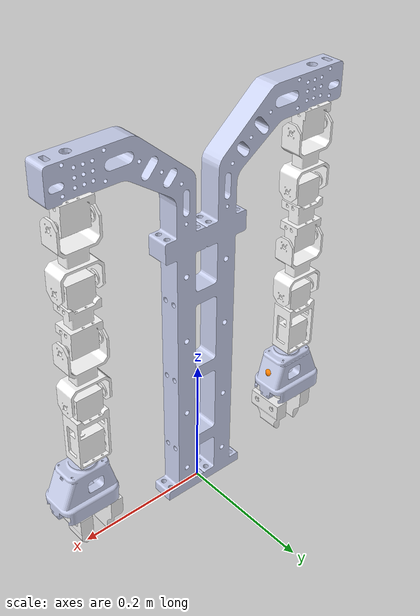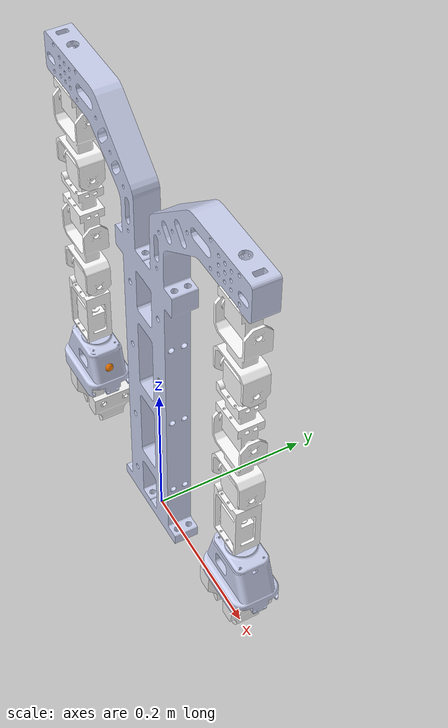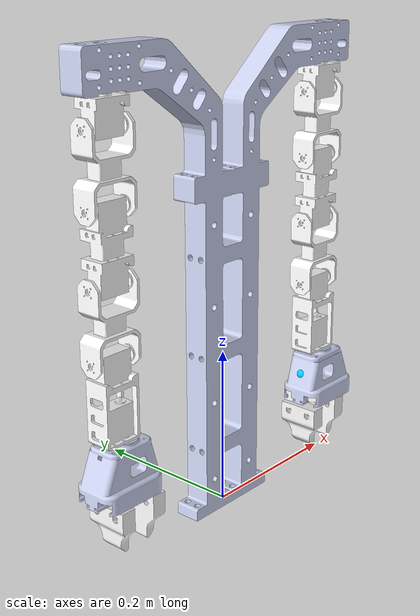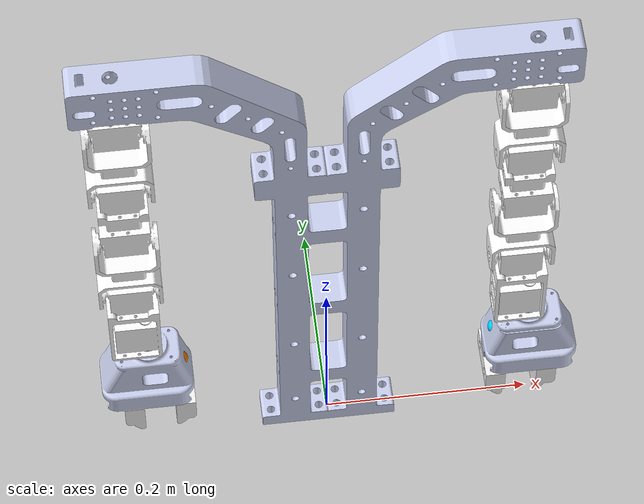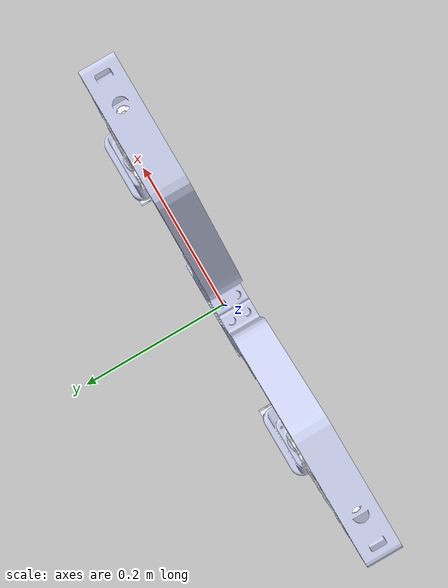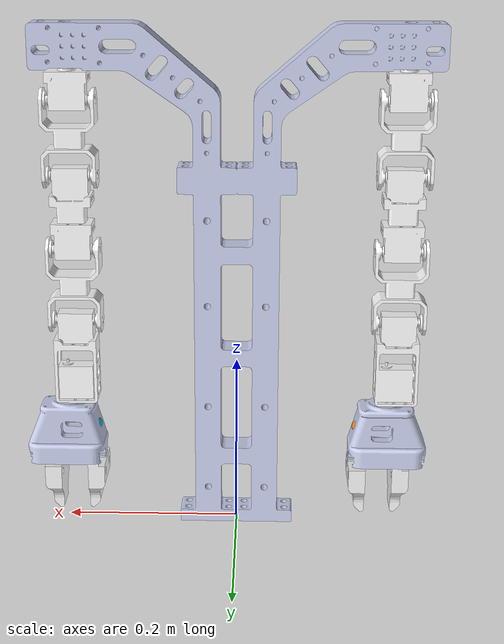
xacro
<?xml version="1.0" encoding="utf-8"?>
<robot xmlns:xacro="http://www.ros.org/wiki/xacro"
  name="dexter_arm">
  <link
    name="base_link">
    <inertial>
      <origin
        xyz="1.94289029309402E-16 -1.17267306976032E-15 0.336691106271961"
        rpy="0 0 0" />
      <mass
        value="1.50541140238431" />
      <inertia
        ixx="0.015557818570861"
        ixy="6.84623852621616E-12"
        ixz="3.83456530151513E-19"
        iyy="0.0180203504414457"
        iyz="5.38593319905951E-17"
        izz="0.00261529849461049" />
    </inertial>
    <visual>
      <origin
        xyz="0 0 0"
        rpy="0 0 0" />
      <geometry>
        <mesh
          filename="package://dexter_arm_description/meshes/base_link.STL" />
      </geometry>
      <material
        name="">
        <color
          rgba="0.792156862745098 0.819607843137255 0.933333333333333 1" />
      </material>
    </visual>
    <collision>
      <origin
        xyz="0 0 0"
        rpy="0 0 0" />
      <geometry>
        <mesh
          filename="package://dexter_arm_description/meshes/base_link.STL" />
      </geometry>
    </collision>
  </link>
  <link
    name="l1l">
    <inertial>
      <origin
        xyz="-2.06768076455033E-05 -3.7470027081099E-16 0.020318702946937"
        rpy="0 0 0" />
      <mass
        value="0.0412610106656879" />
      <inertia
        ixx="6.45452263055138E-06"
        ixy="3.97873238125421E-21"
        ixz="-5.67173895647604E-10"
        iyy="1.08529418395194E-05"
        iyz="-2.17709921074147E-21"
        izz="8.35698735982534E-06" />
    </inertial>
    <visual>
      <origin
        xyz="0 0 0"
        rpy="0 0 0" />
      <geometry>
        <mesh
          filename="package://dexter_arm_description/meshes/l1l.STL" />
      </geometry>
      <material
        name="">
        <color
          rgba="1 1 1 1" />
      </material>
    </visual>
    <collision>
      <origin
        xyz="0 0 0"
        rpy="0 0 0" />
      <geometry>
        <mesh
          filename="package://dexter_arm_description/meshes/l1l.STL" />
      </geometry>
    </collision>
  </link>
  <joint
    name="j1l"
    type="revolute">
    <origin
      xyz="-0.185 0 0.5347"
      rpy="3.14159265358979 0 0" />
    <parent
      link="base_link" />
    <child
      link="l1l" />
    <axis
      xyz="0 0 1" />
    <limit
      lower="-1.57"
      upper="1.57"
      effort="3.43"
      velocity="5" />
  </joint>
  <link
    name="l2l">
    <inertial>
      <origin
        xyz="0.041999999999998 -2.59901822285968E-12 -4.31399360678597E-12"
        rpy="0 0 0" />
      <mass
        value="0.0412639771770678" />
      <inertia
        ixx="2.03861872352237E-05"
        ixy="1.63053089891251E-16"
        ixz="-1.24803181399013E-19"
        iyy="2.30212674355658E-05"
        iyz="4.89586440745353E-20"
        izz="8.54833447441497E-06" />
    </inertial>
    <visual>
      <origin
        xyz="0 0 0"
        rpy="0 0 0" />
      <geometry>
        <mesh
          filename="package://dexter_arm_description/meshes/l2l.STL" />
      </geometry>
      <material
        name="">
        <color
          rgba="1 1 1 1" />
      </material>
    </visual>
    <collision>
      <origin
        xyz="0 0 0"
        rpy="0 0 0" />
      <geometry>
        <mesh
          filename="package://dexter_arm_description/meshes/l2l.STL" />
      </geometry>
    </collision>
  </link>
  <joint
    name="j2l"
    type="revolute">
    <origin
      xyz="0 0 0.0340000000000011"
      rpy="0 -1.5707963267949 0" />
    <parent
      link="l1l" />
    <child
      link="l2l" />
    <axis
      xyz="0 0 1" />
    <limit
      lower="-1.57"
      upper="1.57"
      effort="3.43"
      velocity="5" />
  </joint>
  <link
    name="l3l">
    <inertial>
      <origin
        xyz="0.0425000000000001 5.22055315643755E-12 -4.31427116254213E-12"
        rpy="0 0 0" />
      <mass
        value="0.0895845826981461" />
      <inertia
        ixx="1.79494942674491E-05"
        ixy="-6.04671250972153E-16"
        ixz="-1.13434779133394E-09"
        iyy="2.28721177257845E-05"
        iyz="-1.7861308915074E-19"
        izz="1.35465501240485E-05" />
    </inertial>
    <visual>
      <origin
        xyz="0 0 0"
        rpy="0 0 0" />
      <geometry>
        <mesh
          filename="package://dexter_arm_description/meshes/l3l.STL" />
      </geometry>
      <material
        name="">
        <color
          rgba="1 1 1 1" />
      </material>
    </visual>
    <collision>
      <origin
        xyz="0 0 0"
        rpy="0 0 0" />
      <geometry>
        <mesh
          filename="package://dexter_arm_description/meshes/l3l.STL" />
      </geometry>
    </collision>
  </link>
  <joint
    name="j3l"
    type="revolute">
    <origin
      xyz="0.083999999999998 0 0"
      rpy="0 0 0" />
    <parent
      link="l2l" />
    <child
      link="l3l" />
    <axis
      xyz="0 0 1" />
    <limit
      lower="-1.57"
      upper="1.57"
      effort="3.43"
      velocity="5" />
  </joint>
  <link
    name="l4l">
    <inertial>
      <origin
        xyz="0.0420000000000001 -3.82788245545385E-12 -4.31488178520567E-12"
        rpy="0 0 0" />
      <mass
        value="0.0412639771770679" />
      <inertia
        ixx="2.03861872352237E-05"
        ixy="2.40158108021555E-16"
        ixz="-3.21447378747586E-20"
        iyy="2.30212674355658E-05"
        iyz="1.52556101057664E-19"
        izz="8.54833447441497E-06" />
    </inertial>
    <visual>
      <origin
        xyz="0 0 0"
        rpy="0 0 0" />
      <geometry>
        <mesh
          filename="package://dexter_arm_description/meshes/l4l.STL" />
      </geometry>
      <material
        name="">
        <color
          rgba="1 1 1 1" />
      </material>
    </visual>
    <collision>
      <origin
        xyz="0 0 0"
        rpy="0 0 0" />
      <geometry>
        <mesh
          filename="package://dexter_arm_description/meshes/l4l.STL" />
      </geometry>
    </collision>
  </link>
  <joint
    name="j4l"
    type="revolute">
    <origin
      xyz="0.0850000000000001 0 0"
      rpy="0 0 0" />
    <parent
      link="l3l" />
    <child
      link="l4l" />
    <axis
      xyz="0 0 1" />
    <limit
      lower="-1.57"
      upper="1.57"
      effort="1.5"
      velocity="5" />
  </joint>
  <link
    name="l5l">
    <inertial>
      <origin
        xyz="0.0451157165053799 6.85340035748785E-05 -0.000519380265183611"
        rpy="0 0 0" />
      <mass
        value="0.0877350527785504" />
      <inertia
        ixx="2.15592269641527E-05"
        ixy="-1.08634478618299E-12"
        ixz="-6.61837513500249E-07"
        iyy="4.2127173971068E-05"
        iyz="-2.81945757063296E-12"
        izz="2.98080635390039E-05" />
    </inertial>
    <visual>
      <origin
        xyz="0 0 0"
        rpy="0 0 0" />
      <geometry>
        <mesh
          filename="package://dexter_arm_description/meshes/l5l.STL" />
      </geometry>
      <material
        name="">
        <color
          rgba="1 1 1 1" />
      </material>
    </visual>
    <collision>
      <origin
        xyz="0 0 0"
        rpy="0 0 0" />
      <geometry>
        <mesh
          filename="package://dexter_arm_description/meshes/l5l.STL" />
      </geometry>
    </collision>
  </link>
  <joint
    name="j5l"
    type="revolute">
    <origin
      xyz="0.0840000000000015 0 0"
      rpy="0 0 0" />
    <parent
      link="l4l" />
    <child
      link="l5l" />
    <axis
      xyz="0 0 1" />
    <limit
      lower="-1.57"
      upper="1.57"
      effort="1.5"
      velocity="5" />
  </joint>
  <link
    name="l6l">
    <inertial>
      <origin
        xyz="-0.00476528037739832 -0.000653262779644108 0.0369292064765206"
        rpy="0 0 0" />
      <mass
        value="0.160590985030217" />
      <inertia
        ixx="5.06987158754222E-05"
        ixy="6.78041755969928E-10"
        ixz="1.12451618614082E-06"
        iyy="0.000111016162710577"
        iyz="-1.51064931043486E-10"
        izz="0.000135606227386264" />
    </inertial>
    <visual>
      <origin
        xyz="0 0 0"
        rpy="0 0 0" />
      <geometry>
        <mesh
          filename="package://dexter_arm_description/meshes/l6l.STL" />
      </geometry>
      <material
        name="">
        <color
          rgba="0.792156862745098 0.819607843137255 0.933333333333333 1" />
      </material>
    </visual>
    <collision>
      <origin
        xyz="0 0 0"
        rpy="0 0 0" />
      <geometry>
        <mesh
          filename="package://dexter_arm_description/meshes/l6l.STL" />
      </geometry>
    </collision>
  </link>
  <joint
    name="j6l"
    type="revolute">
    <origin
      xyz="0.100000000000004 0.00011000000184596 -0.0115000000043161"
      rpy="0 1.5707963267949 0" />
    <parent
      link="l5l" />
    <child
      link="l6l" />
    <axis
      xyz="0 0 -1" />
    <limit
      lower="-3.14"
      upper="3.14"
      effort="1.5"
      velocity="5" />
  </joint>
  <link
    name="l7l1">
    <inertial>
      <origin
        xyz="-0.0130590486725677 -0.0655739671662708 0.0299703503590698"
        rpy="0 0 0" />
      <mass
        value="0.0508689051828396" />
      <inertia
        ixx="2.93394596393009E-05"
        ixy="-4.66576010064367E-06"
        ixz="3.1482012642844E-06"
        iyy="1.89128491053784E-05"
        iyz="5.01575897640309E-06"
        izz="2.44707666408611E-05" />
    </inertial>
    <visual>
      <origin
        xyz="0 0 0"
        rpy="0 0 0" />
      <geometry>
        <mesh
          filename="package://dexter_arm_description/meshes/l7l1.STL" />
      </geometry>
      <material
        name="">
        <color
          rgba="0.96078431372549 0.96078431372549 0.964705882352941 1" />
      </material>
    </visual>
    <collision>
      <origin
        xyz="0 0 0"
        rpy="0 0 0" />
      <geometry>
        <mesh
          filename="package://dexter_arm_description/meshes/l7l1.STL" />
      </geometry>
    </collision>
  </link>
  <joint
    name="j7l1"
    type="prismatic">
    <origin
      xyz="-0.00031015564213932 -0.0334996810602779 0.024487500081954"
      rpy="-1.5707963267949 0 0" />
    <parent
      link="l6l" />
    <child
      link="l7l1" />
    <axis
      xyz="1 0 0" />
    <limit
      lower="-0.025"
      upper="0.0"
      effort="20"
      velocity="0.2" />
  </joint>
  <link
    name="l7l2">
    <inertial>
      <origin
        xyz="-0.0130590486725638 -0.0655739671662711 0.0299703503605255"
        rpy="0 0 0" />
      <mass
        value="0.0508689051828397" />
      <inertia
        ixx="2.93394596393009E-05"
        ixy="-4.66576010064375E-06"
        ixz="3.14820126428442E-06"
        iyy="1.89128491053785E-05"
        iyz="5.01575897640308E-06"
        izz="2.44707666408611E-05" />
    </inertial>
    <visual>
      <origin
        xyz="0 0 0"
        rpy="0 0 0" />
      <geometry>
        <mesh
          filename="package://dexter_arm_description/meshes/l7l2.STL" />
      </geometry>
      <material
        name="">
        <color
          rgba="0.96078431372549 0.96078431372549 0.964705882352941 1" />
      </material>
    </visual>
    <collision>
      <origin
        xyz="0 0 0"
        rpy="0 0 0" />
      <geometry>
        <mesh
          filename="package://dexter_arm_description/meshes/l7l2.STL" />
      </geometry>
    </collision>
  </link>
  <joint
    name="j7l2"
    type="prismatic">
    <origin
      xyz="0.0138251055330376 0.0320003186418183 0.0244125000819536"
      rpy="-1.5707963267949 0 3.14159265358979" />
    <parent
      link="l6l" />
    <child
      link="l7l2" />
    <axis
      xyz="-1 0 0" />
    <limit
      lower="-0.025"
      upper="0.0"
      effort="20"
      velocity="0.2" />
  </joint>
  <link
    name="l1r">
    <inertial>
      <origin
        xyz="-2.06768076423253E-05 1.73472347597681E-16 0.0203187029469341"
        rpy="0 0 0" />
      <mass
        value="0.0412610106656878" />
      <inertia
        ixx="6.45452263055136E-06"
        ixy="-1.27336023491028E-21"
        ixz="-5.67173895653783E-10"
        iyy="1.08529418395194E-05"
        iyz="-1.17131567321725E-20"
        izz="8.35698735982531E-06" />
    </inertial>
    <visual>
      <origin
        xyz="0 0 0"
        rpy="0 0 0" />
      <geometry>
        <mesh
          filename="package://dexter_arm_description/meshes/l1r.STL" />
      </geometry>
      <material
        name="">
        <color
          rgba="1 1 1 1" />
      </material>
    </visual>
    <collision>
      <origin
        xyz="0 0 0"
        rpy="0 0 0" />
      <geometry>
        <mesh
          filename="package://dexter_arm_description/meshes/l1r.STL" />
      </geometry>
    </collision>
  </link>
  <joint
    name="j1r"
    type="revolute">
    <origin
      xyz="0.185 0 0.534699999999999"
      rpy="-3.14159265358979 0 0" />
    <parent
      link="base_link" />
    <child
      link="l1r" />
    <axis
      xyz="0 0 1" />
    <limit
      lower="-1.57"
      upper="1.57"
      effort="3.43"
      velocity="5" />
  </joint>
  <link
    name="l2r">
    <inertial>
      <origin
        xyz="0.0420000000000003 6.89094614703123E-13 4.31335522854681E-12"
        rpy="0 0 0" />
      <mass
        value="0.0412639771770678" />
      <inertia
        ixx="2.03861872352237E-05"
        ixy="-4.32483061785773E-17"
        ixz="2.35202404428686E-20"
        iyy="2.30212674355658E-05"
        iyz="4.48398426029756E-20"
        izz="8.54833447441498E-06" />
    </inertial>
    <visual>
      <origin
        xyz="0 0 0"
        rpy="0 0 0" />
      <geometry>
        <mesh
          filename="package://dexter_arm_description/meshes/l2r.STL" />
      </geometry>
      <material
        name="">
        <color
          rgba="1 1 1 1" />
      </material>
    </visual>
    <collision>
      <origin
        xyz="0 0 0"
        rpy="0 0 0" />
      <geometry>
        <mesh
          filename="package://dexter_arm_description/meshes/l2r.STL" />
      </geometry>
    </collision>
  </link>
  <joint
    name="j2r"
    type="revolute">
    <origin
      xyz="0 0 0.0339999999999996"
      rpy="3.14159265358979 -1.5707963267949 0" />
    <parent
      link="l1r" />
    <child
      link="l2r" />
    <axis
      xyz="0 0 -1" />
    <limit
      lower="-1.57"
      upper="1.57"
      effort="3.43"
      velocity="5" />
  </joint>
  <link
    name="l3r">
    <inertial>
      <origin
        xyz="0.042499999999999 -9.64506252643105E-15 4.31646385301576E-12"
        rpy="0 0 0" />
      <mass
        value="0.0895845826981461" />
      <inertia
        ixx="1.79494942674491E-05"
        ixy="-2.38009674149187E-20"
        ixz="1.13434779130171E-09"
        iyy="2.28721177257846E-05"
        iyz="-1.00376713822626E-20"
        izz="1.35465501240486E-05" />
    </inertial>
    <visual>
      <origin
        xyz="0 0 0"
        rpy="0 0 0" />
      <geometry>
        <mesh
          filename="package://dexter_arm_description/meshes/l3r.STL" />
      </geometry>
      <material
        name="">
        <color
          rgba="1 1 1 1" />
      </material>
    </visual>
    <collision>
      <origin
        xyz="0 0 0"
        rpy="0 0 0" />
      <geometry>
        <mesh
          filename="package://dexter_arm_description/meshes/l3r.STL" />
      </geometry>
    </collision>
  </link>
  <joint
    name="j3r"
    type="revolute">
    <origin
      xyz="0.0840000000000007 0 0"
      rpy="0 0 0" />
    <parent
      link="l2r" />
    <child
      link="l3r" />
    <axis
      xyz="0 0 -1" />
    <limit
      lower="-1.57"
      upper="1.57"
      effort="3.43"
      velocity="5" />
  </joint>
  <link
    name="l4r">
    <inertial>
      <origin
        xyz="0.0419999999999995 -5.86537762803374E-13 4.31464586281294E-12"
        rpy="0 0 0" />
      <mass
        value="0.0412639771770678" />
      <inertia
        ixx="2.03861872352237E-05"
        ixy="4.66903518134811E-17"
        ixz="2.626158100344E-20"
        iyy="2.30212674355658E-05"
        iyz="1.47683200562412E-19"
        izz="8.54833447441498E-06" />
    </inertial>
    <visual>
      <origin
        xyz="0 0 0"
        rpy="0 0 0" />
      <geometry>
        <mesh
          filename="package://dexter_arm_description/meshes/l4r.STL" />
      </geometry>
      <material
        name="">
        <color
          rgba="1 1 1 1" />
      </material>
    </visual>
    <collision>
      <origin
        xyz="0 0 0"
        rpy="0 0 0" />
      <geometry>
        <mesh
          filename="package://dexter_arm_description/meshes/l4r.STL" />
      </geometry>
    </collision>
  </link>
  <joint
    name="j4r"
    type="revolute">
    <origin
      xyz="0.0850000000000011 0 0"
      rpy="0 0 0" />
    <parent
      link="l3r" />
    <child
      link="l4r" />
    <axis
      xyz="0 0 -1" />
    <limit
      lower="-1.57"
      upper="1.57"
      effort="1.5"
      velocity="5" />
  </joint>
  <link
    name="l5r">
    <inertial>
      <origin
        xyz="0.0451157165053795 -6.85340036724255E-05 0.000519380265182653"
        rpy="0 0 0" />
      <mass
        value="0.0877350527785506" />
      <inertia
        ixx="2.15592269641528E-05"
        ixy="1.08634469346835E-12"
        ixz="6.61837513500237E-07"
        iyy="4.21271739710681E-05"
        iyz="-2.81945757187487E-12"
        izz="2.9808063539004E-05" />
    </inertial>
    <visual>
      <origin
        xyz="0 0 0"
        rpy="0 0 0" />
      <geometry>
        <mesh
          filename="package://dexter_arm_description/meshes/l5r.STL" />
      </geometry>
      <material
        name="">
        <color
          rgba="1 1 1 1" />
      </material>
    </visual>
    <collision>
      <origin
        xyz="0 0 0"
        rpy="0 0 0" />
      <geometry>
        <mesh
          filename="package://dexter_arm_description/meshes/l5r.STL" />
      </geometry>
    </collision>
  </link>
  <joint
    name="j5r"
    type="revolute">
    <origin
      xyz="0.083999999999999 0 0"
      rpy="0 0 0" />
    <parent
      link="l4r" />
    <child
      link="l5r" />
    <axis
      xyz="0 0 -1" />
    <limit
      lower="-1.57"
      upper="1.57"
      effort="1.5"
      velocity="5" />
  </joint>
  <link
    name="l6r">
    <inertial>
      <origin
        xyz="-0.00476528037740019 -0.000653262777460334 0.0369292064765232"
        rpy="0 0 0" />
      <mass
        value="0.160590985030217" />
      <inertia
        ixx="5.06987158754221E-05"
        ixy="6.78041755694271E-10"
        ixz="1.12451618614082E-06"
        iyy="0.000111016162710577"
        iyz="-1.5106493104616E-10"
        izz="0.000135606227386264" />
    </inertial>
    <visual>
      <origin
        xyz="0 0 0"
        rpy="0 0 0" />
      <geometry>
        <mesh
          filename="package://dexter_arm_description/meshes/l6r.STL" />
      </geometry>
      <material
        name="">
        <color
          rgba="0.792156862745098 0.819607843137255 0.933333333333333 1" />
      </material>
    </visual>
    <collision>
      <origin
        xyz="0 0 0"
        rpy="0 0 0" />
      <geometry>
        <mesh
          filename="package://dexter_arm_description/meshes/l6r.STL" />
      </geometry>
    </collision>
  </link>
  <joint
    name="j6r"
    type="revolute">
    <origin
      xyz="0.0999999999999998 -0.000110000000436546 0.0115000000043133"
      rpy="0 1.5707963267949 0" />
    <parent
      link="l5r" />
    <child
      link="l6r" />
    <axis
      xyz="0 0 -1" />
    <limit
      lower="-3.14"
      upper="3.14"
      effort="1.5"
      velocity="5" />
  </joint>
  <link
    name="l7r1">
    <inertial>
      <origin
        xyz="-0.0130590486814246 -0.0655739671734152 0.0299703503645945"
        rpy="0 0 0" />
      <mass
        value="0.0508689051689457" />
      <inertia
        ixx="2.93394596236661E-05"
        ixy="-4.66576008817436E-06"
        ixz="3.14820125528345E-06"
        iyy="1.89128490852876E-05"
        iyz="5.01575896892049E-06"
        izz="2.44707666160797E-05" />
    </inertial>
    <visual>
      <origin
        xyz="0 0 0"
        rpy="0 0 0" />
      <geometry>
        <mesh
          filename="package://dexter_arm_description/meshes/l7r1.STL" />
      </geometry>
      <material
        name="">
        <color
          rgba="0.96078431372549 0.96078431372549 0.964705882352941 1" />
      </material>
    </visual>
    <collision>
      <origin
        xyz="0 0 0"
        rpy="0 0 0" />
      <geometry>
        <mesh
          filename="package://dexter_arm_description/meshes/l7r1.STL" />
      </geometry>
    </collision>
  </link>
  <joint
    name="j7r1"
    type="prismatic">
    <origin
      xyz="0.0138251055330352 0.0320003186428659 0.0244125000819573"
      rpy="-1.5707963267949 0 3.14159265358979" />
    <parent
      link="l6r" />
    <child
      link="l7r1" />
    <axis
      xyz="-1 0 0" />
    <limit
      lower="-0.025"
      upper="0.0"
      effort="20"
      velocity="0.2" />
  </joint>
  <link
    name="l7r2">
    <inertial>
      <origin
        xyz="-0.0130590486725645 -0.0655739671662706 0.0299703503599605"
        rpy="0 0 0" />
      <mass
        value="0.0508689051828396" />
      <inertia
        ixx="2.93394596393009E-05"
        ixy="-4.6657601006438E-06"
        ixz="3.14820126428445E-06"
        iyy="1.89128491053786E-05"
        iyz="5.01575897640307E-06"
        izz="2.44707666408611E-05" />
    </inertial>
    <visual>
      <origin
        xyz="0 0 0"
        rpy="0 0 0" />
      <geometry>
        <mesh
          filename="package://dexter_arm_description/meshes/l7r2.STL" />
      </geometry>
      <material
        name="">
        <color
          rgba="0.96078431372549 0.96078431372549 0.964705882352941 1" />
      </material>
    </visual>
    <collision>
      <origin
        xyz="0 0 0"
        rpy="0 0 0" />
      <geometry>
        <mesh
          filename="package://dexter_arm_description/meshes/l7r2.STL" />
      </geometry>
    </collision>
  </link>
  <joint
    name="j7r2"
    type="prismatic">
    <origin
      xyz="-0.000310155642144982 -0.0334996810589849 0.0244125000819576"
      rpy="-1.5707963267949 0 0" />
    <parent
      link="l6r" />
    <child
      link="l7r2" />
    <axis
      xyz="1 0 0" />
    <limit
      lower="-0.025"
      upper="0.0"
      effort="20"
      velocity="0.2" />
  </joint>

  <!-- Explicit TCP links for visibility in RViz and MoveIt end-effector frames -->
  <link
    name="tool0_left">
    <visual>
      <origin
        xyz="0 0 0"
        rpy="0 0 0" />
      <geometry>
        <sphere radius="0.008" />
      </geometry>
      <material name="tcp_left_color">
        <color rgba="1 0.5 0 1" />
      </material>
    </visual>
    <collision>
      <origin
        xyz="0 0 0"
        rpy="0 0 0" />
      <geometry>
        <sphere radius="0.008" />
      </geometry>
    </collision>
  </link>
  <joint
    name="tool0_left_fixed_joint"
    type="fixed">
    <origin
      xyz="0.03 0 0.03"
      rpy="0 0 0" />
    <parent
      link="l6l" />
    <child
      link="tool0_left" />
  </joint>

  <link
    name="tool0_right">
    <visual>
      <origin
        xyz="0 0 0"
        rpy="0 0 0" />
      <geometry>
        <sphere radius="0.008" />
      </geometry>
      <material name="tcp_right_color">
        <color rgba="0 0.8 1 1" />
      </material>
    </visual>
    <collision>
      <origin
        xyz="0 0 0"
        rpy="0 0 0" />
      <geometry>
        <sphere radius="0.008" />
      </geometry>
    </collision>
  </link>
  <joint
    name="tool0_right_fixed_joint"
    type="fixed">
    <origin
      xyz="0.03 0 0.03"
      rpy="0 0 0" />
    <parent
      link="l6r" />
    <child
      link="tool0_right" />
  </joint>
</robot>
